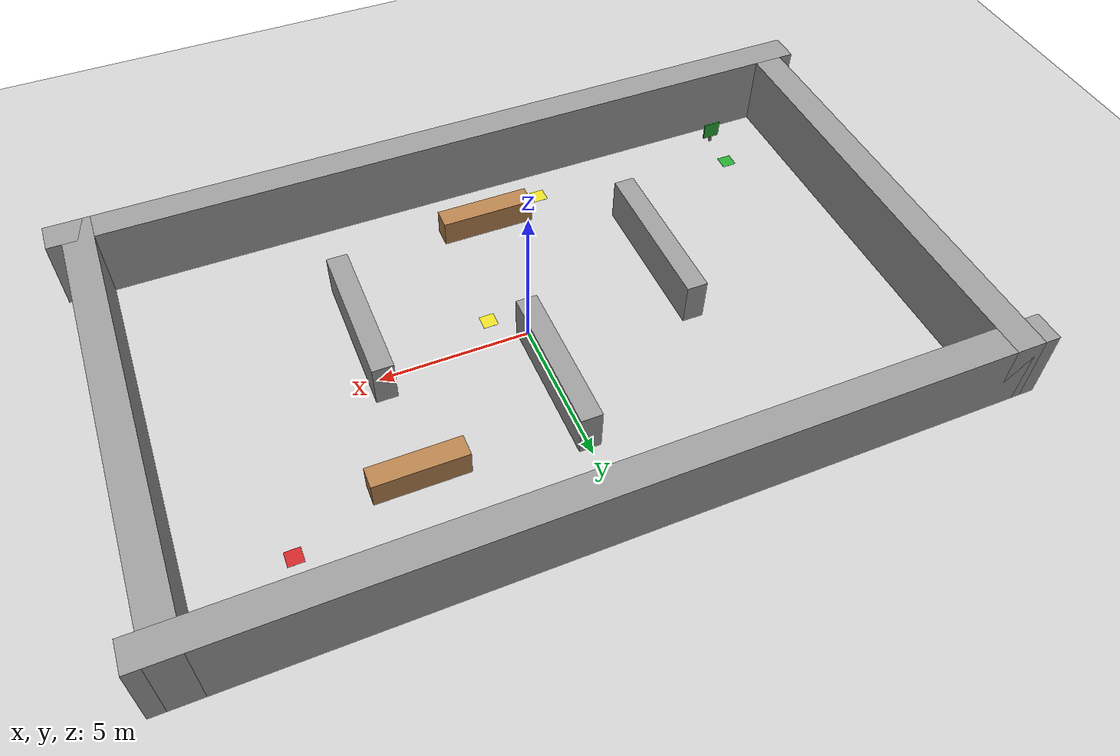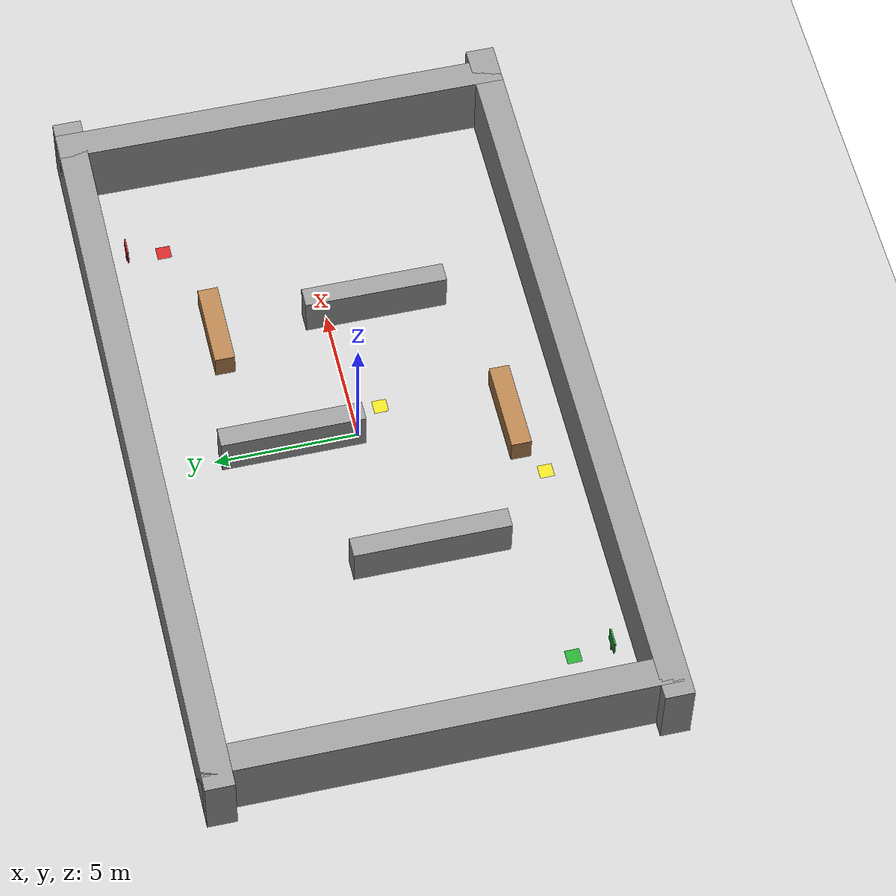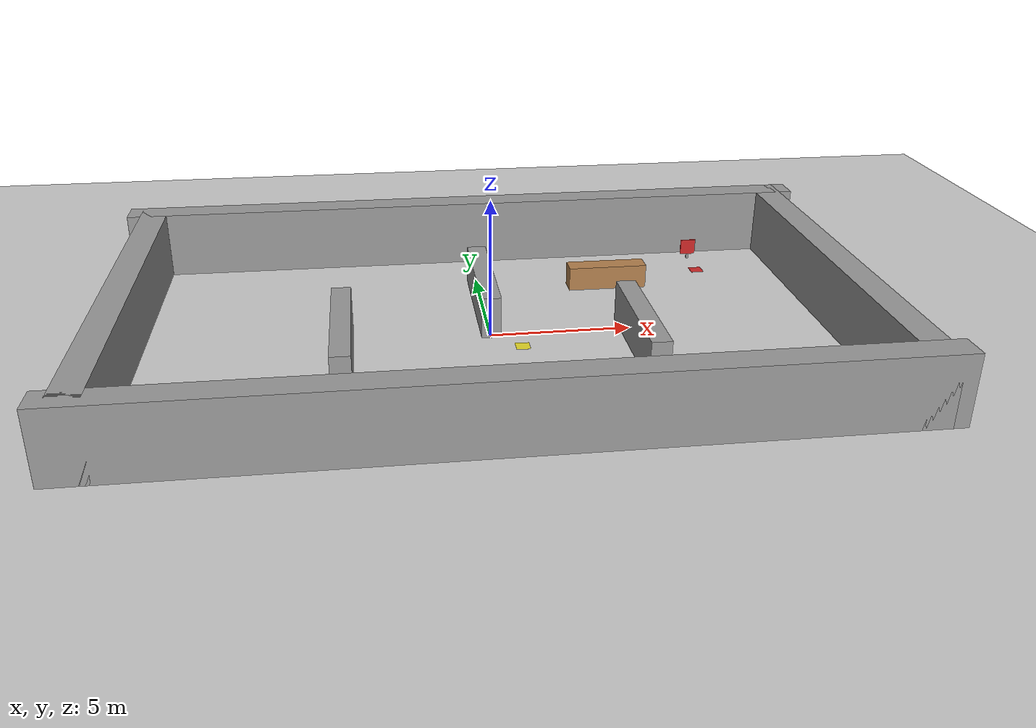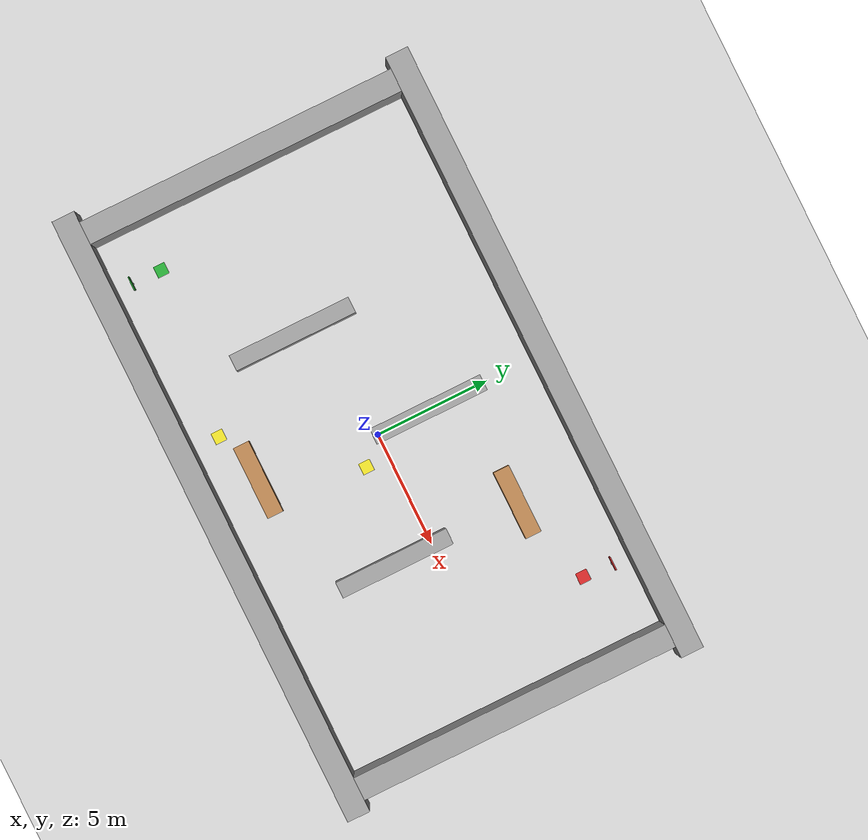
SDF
<?xml version="1.0"?>
<sdf version="1.6">
  <world name="obstacle_avoidance_world">

    <physics type="ode">
      <real_time_update_rate>1000.0</real_time_update_rate>
      <max_step_size>0.001</max_step_size>
      <real_time_factor>1</real_time_factor>
      <ode>
        <solver>
          <type>quick</type>
          <iters>150</iters>
          <precon_iters>0</precon_iters>
          <sor>1.400000</sor>
        </solver>
        <constraints>
          <cfm>0.00001</cfm>
          <erp>0.2</erp>
          <contact_max_correcting_vel>2000.000000</contact_max_correcting_vel>
          <contact_surface_layer>0.01000</contact_surface_layer>
        </constraints>
      </ode>
    </physics>

    <scene>
      <ambient>0.4 0.4 0.4 1</ambient>
      <background>0.7 0.7 0.7 1</background>
      <shadows>true</shadows>
    </scene>

    <include>
      <uri>model://ground_plane</uri>
    </include>

    <include>
      <uri>model://sun</uri>
    </include>

    <!-- ── North wall  y = +7.5 ── -->
    <model name="wall_north">
      <static>true</static>
      <pose>0 7.5 1.25 0 0 0</pose>
      <link name="link">
        <collision name="collision">
          <geometry><box><size>27 1 2.5</size></box></geometry>
          <surface>
            <friction><ode><mu>100</mu><mu2>50</mu2></ode></friction>
          </surface>
        </collision>
        <visual name="visual">
          <geometry><box><size>27 1 2.5</size></box></geometry>
          <material>
            <script>
              <uri>file://media/materials/scripts/gazebo.material</uri>
              <name>Gazebo/Grey</name>
            </script>
          </material>
        </visual>
      </link>
    </model>

    <!-- ── South wall  y = -7.5 ── -->
    <model name="wall_south">
      <static>true</static>
      <pose>0 -7.5 1.25 0 0 0</pose>
      <link name="link">
        <collision name="collision">
          <geometry><box><size>27 1 2.5</size></box></geometry>
        </collision>
        <visual name="visual">
          <geometry><box><size>27 1 2.5</size></box></geometry>
          <material>
            <script>
              <uri>file://media/materials/scripts/gazebo.material</uri>
              <name>Gazebo/Grey</name>
            </script>
          </material>
        </visual>
      </link>
    </model>

    <!-- ── West wall  x = -12.5 ── -->
    <model name="wall_west">
      <static>true</static>
      <pose>-12.5 0 1.25 0 0 0</pose>
      <link name="link">
        <collision name="collision">
          <geometry><box><size>1 16 2.5</size></box></geometry>
        </collision>
        <visual name="visual">
          <geometry><box><size>1 16 2.5</size></box></geometry>
          <material>
            <script>
              <uri>file://media/materials/scripts/gazebo.material</uri>
              <name>Gazebo/Grey</name>
            </script>
          </material>
        </visual>
      </link>
    </model>

    <!-- ── East wall  x = +12.5 ── -->
    <model name="wall_east">
      <static>true</static>
      <pose>12.5 0 1.25 0 0 0</pose>
      <link name="link">
        <collision name="collision">
          <geometry><box><size>1 16 2.5</size></box></geometry>
        </collision>
        <visual name="visual">
          <geometry><box><size>1 16 2.5</size></box></geometry>
          <material>
            <script>
              <uri>file://media/materials/scripts/gazebo.material</uri>
              <name>Gazebo/Grey</name>
            </script>
          </material>
        </visual>
      </link>
    </model>

    <!-- ── Static obstacles: warehouse-style shelves/crates ──────────────── -->
    <model name="shelf_west">
      <static>true</static>
      <pose>-5.2 -1.3 0.75 0 0 0</pose>
      <link name="link">
        <collision name="collision">
          <geometry><box><size>0.7 5.4 1.5</size></box></geometry>
        </collision>
        <visual name="visual">
          <geometry><box><size>0.7 5.4 1.5</size></box></geometry>
          <material>
            <script>
              <uri>file://media/materials/scripts/gazebo.material</uri>
              <name>Gazebo/Grey</name>
            </script>
          </material>
        </visual>
      </link>
    </model>

    <model name="shelf_mid">
      <static>true</static>
      <pose>0.0 2.3 0.75 0 0 0</pose>
      <link name="link">
        <collision name="collision">
          <geometry><box><size>0.7 5.0 1.5</size></box></geometry>
        </collision>
        <visual name="visual">
          <geometry><box><size>0.7 5.0 1.5</size></box></geometry>
          <material>
            <script>
              <uri>file://media/materials/scripts/gazebo.material</uri>
              <name>Gazebo/Grey</name>
            </script>
          </material>
        </visual>
      </link>
    </model>

    <model name="shelf_east">
      <static>true</static>
      <pose>5.0 -1.7 0.75 0 0 0</pose>
      <link name="link">
        <collision name="collision">
          <geometry><box><size>0.7 5.0 1.5</size></box></geometry>
        </collision>
        <visual name="visual">
          <geometry><box><size>0.7 5.0 1.5</size></box></geometry>
          <material>
            <script>
              <uri>file://media/materials/scripts/gazebo.material</uri>
              <name>Gazebo/Grey</name>
            </script>
          </material>
        </visual>
      </link>
    </model>

    <model name="crate_south">
      <static>true</static>
      <pose>-0.5 -5.2 0.45 0 0 0</pose>
      <link name="link">
        <collision name="collision">
          <geometry><box><size>3.2 0.7 0.9</size></box></geometry>
        </collision>
        <visual name="visual">
          <geometry><box><size>3.2 0.7 0.9</size></box></geometry>
          <material>
            <script>
              <uri>file://media/materials/scripts/gazebo.material</uri>
              <name>Gazebo/WoodPallet</name>
            </script>
          </material>
        </visual>
      </link>
    </model>

    <model name="crate_north">
      <static>true</static>
      <pose>5.0 3.9 0.45 0 0 0</pose>
      <link name="link">
        <collision name="collision">
          <geometry><box><size>3.0 0.7 0.9</size></box></geometry>
        </collision>
        <visual name="visual">
          <geometry><box><size>3.0 0.7 0.9</size></box></geometry>
          <material>
            <script>
              <uri>file://media/materials/scripts/gazebo.material</uri>
              <name>Gazebo/WoodPallet</name>
            </script>
          </material>
        </visual>
      </link>
    </model>

    <!-- ── Floor markings: start / waypoint / goal boxes (visual only) ── -->
    <model name="marker_start">
      <static>true</static>
      <pose>-10 -5 0.001 0 0 0</pose>
      <link name="link">
        <visual name="visual">
          <geometry><box><size>0.5 0.5 0.001</size></box></geometry>
          <material>
            <script>
              <uri>file://media/materials/scripts/gazebo.material</uri>
              <name>Gazebo/Green</name>
            </script>
          </material>
        </visual>
      </link>
    </model>

    <model name="marker_waypoint_1">
      <static>true</static>
      <pose>-2.8 -5.9 0.001 0 0 0</pose>
      <link name="link">
        <visual name="visual">
          <geometry><box><size>0.5 0.5 0.001</size></box></geometry>
          <material>
            <script>
              <uri>file://media/materials/scripts/gazebo.material</uri>
              <name>Gazebo/Yellow</name>
            </script>
          </material>
        </visual>
      </link>
    </model>

    <model name="marker_waypoint_2">
      <static>true</static>
      <pose>1.0 -1.0 0.001 0 0 0</pose>
      <link name="link">
        <visual name="visual">
          <geometry><box><size>0.5 0.5 0.001</size></box></geometry>
          <material>
            <script>
              <uri>file://media/materials/scripts/gazebo.material</uri>
              <name>Gazebo/Yellow</name>
            </script>
          </material>
        </visual>
      </link>
    </model>

    <model name="marker_goal">
      <static>true</static>
      <pose>9 5 0.001 0 0 0</pose>
      <link name="link">
        <visual name="visual">
          <geometry><box><size>0.5 0.5 0.001</size></box></geometry>
          <material>
            <script>
              <uri>file://media/materials/scripts/gazebo.material</uri>
              <name>Gazebo/Red</name>
            </script>
          </material>
        </visual>
      </link>
    </model>

    <model name="sign_start_green">
      <static>true</static>
      <pose>-10 -6.3 0 0 0 0</pose>
      <link name="link">
        <!-- support post -->
        <visual name="post">
          <pose>0 0 0.1 0 0 0</pose>
          <geometry><box><size>0.08 0.08 0.20</size></box></geometry>
          <material>
            <script>
              <uri>file://media/materials/scripts/gazebo.material</uri>
              <name>Gazebo/Grey</name>
            </script>
          </material>
        </visual>
        <!-- green square panel (faces the robot path) -->
        <visual name="panel">
          <pose>0 0 0.5 0 0 0</pose>
          <geometry><box><size>0.60 0.05 0.60</size></box></geometry>
          <material>
            <script>
              <uri>file://media/materials/scripts/gazebo.material</uri>
              <name>Gazebo/Green</name>
            </script>
          </material>
        </visual>
      </link>
    </model>

    <model name="sign_end_red">
      <static>true</static>
      <pose>9 6.3 0 0 0 0</pose>
      <link name="link">
        <visual name="post">
          <pose>0 0 0.1 0 0 0</pose>
          <geometry><box><size>0.08 0.08 0.20</size></box></geometry>
          <material>
            <script>
              <uri>file://media/materials/scripts/gazebo.material</uri>
              <name>Gazebo/Grey</name>
            </script>
          </material>
        </visual>
        <visual name="panel">
          <pose>0 0 0.5 0 0 0</pose>
          <geometry><box><size>0.60 0.05 0.60</size></box></geometry>
          <material>
            <script>
              <uri>file://media/materials/scripts/gazebo.material</uri>
              <name>Gazebo/Red</name>
            </script>
          </material>
        </visual>
      </link>
    </model>

  </world>
</sdf>
